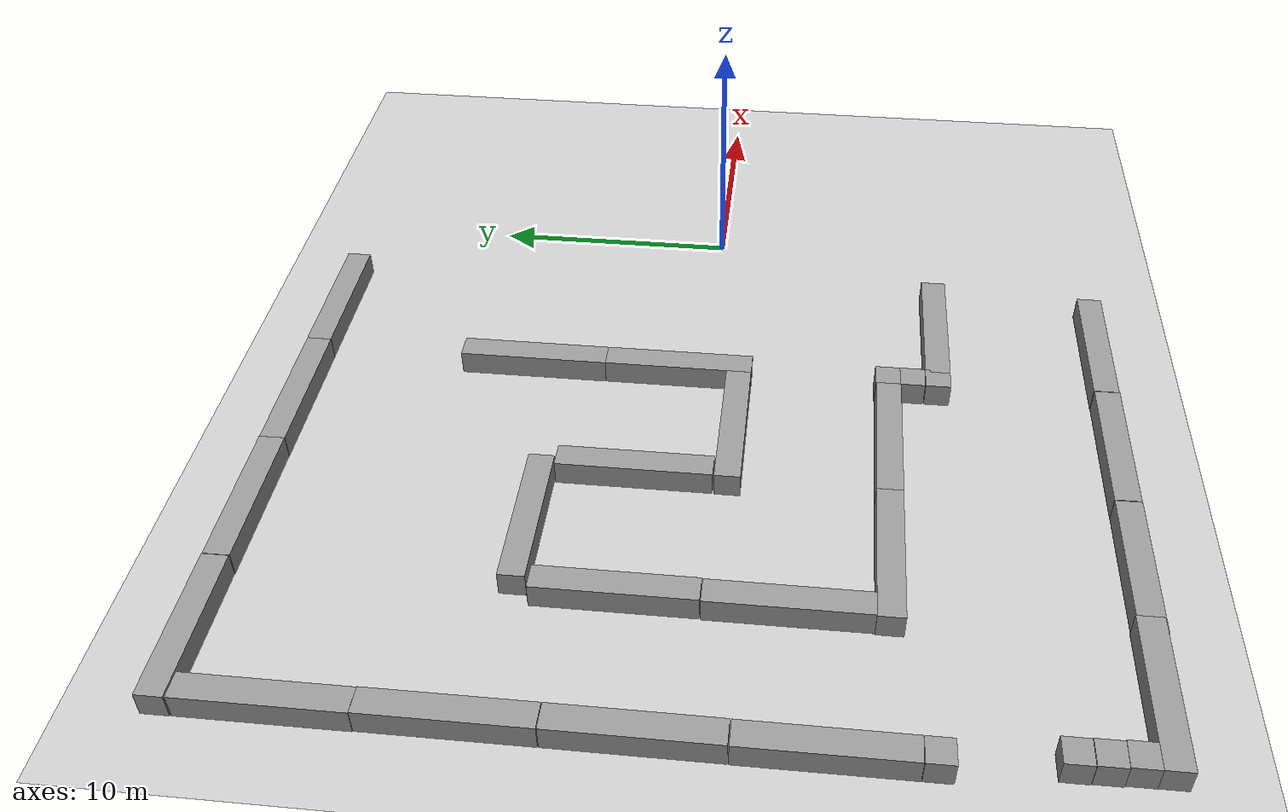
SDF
<sdf version="1.6">
 <world name="default">
  <model name="ground_plane">
   <static>1</static>
   <link name="link">
    <collision name="collision">
     <geometry><plane><normal>0 0 1</normal><size>100 100</size></plane></geometry>
     <surface>
      <contact><collide_bitmask>65535</collide_bitmask></contact>
      <friction><ode><mu>100</mu><mu2>50</mu2></ode></friction>
     </surface>
    </collision>
    <visual name="visual">
     <cast_shadows>0</cast_shadows>
     <geometry><plane><normal>0 0 1</normal><size>100 100</size></plane></geometry>
     <material>
      <script><uri>file://media/materials/scripts/gazebo.material</uri><name>Gazebo/Grey</name></script>
     </material>
    </visual>
   </link>
  </model>
  <model name="long_wall_0_8">
   <link name="link">
    <inertial>
     <mass>1</mass>
     <inertia>
      <ixx>0.166667</ixx>
      <ixy>0</ixy>
      <ixz>0</ixz>
      <iyy>0.166667</iyy>
      <iyz>0</iyz>
      <izz>0.166667</izz>
     </inertia>
    </inertial>
    <visual name="visual">
     <geometry><box><size>6 1 1</size></box></geometry>
     <material>
      <script><name>Gazebo/Grey</name><uri>file://media/materials/scripts/gazebo.material</uri></script>
      <shader type="vertex"><normal_map>__default__</normal_map></shader>
      <ambient>0.3 0.3 0.3 1</ambient>
      <diffuse>0.7 0.7 0.7 1</diffuse>
      <specular>0.01 0.01 0.01 1</specular>
      <emissive>0 0 0 1</emissive>
     </material>
     <pose>0 0 0.5 0 -0 0</pose>
    </visual>
    <collision name="collision">
     <geometry><box><size>1 1 1</size></box></geometry>
     <surface>
      <friction>
       <ode><mu>1</mu><mu2>1</mu2><fdir1>0 0 0</fdir1><slip1>0</slip1><slip2>0</slip2></ode>
       <torsional>
        <coefficient>1</coefficient>
        <patch_radius>0</patch_radius>
        <surface_radius>0</surface_radius>
        <use_patch_radius>1</use_patch_radius>
        <ode><slip>0</slip></ode>
       </torsional>
      </friction>
      <bounce><restitution_coefficient>0</restitution_coefficient><threshold>1e+06</threshold></bounce>
      <contact>
       <collide_without_contact>0</collide_without_contact>
       <collide_without_contact_bitmask>1</collide_without_contact_bitmask>
       <collide_bitmask>1</collide_bitmask>
       <ode>
        <soft_cfm>0</soft_cfm>
        <soft_erp>0.2</soft_erp>
        <kp>1e+13</kp>
        <kd>1</kd>
        <max_vel>0.01</max_vel>
        <min_depth>0</min_depth>
       </ode>
       <bullet>
        <split_impulse>1</split_impulse>
        <split_impulse_penetration_threshold>-0.01</split_impulse_penetration_threshold>
        <soft_cfm>0</soft_cfm>
        <soft_erp>0.2</soft_erp>
        <kp>1e+13</kp>
        <kd>1</kd>
       </bullet>
      </contact>
     </surface>
    </collision>
   </link>
   <static>0</static>
   <pose>-6.007 -9.51284 0 0 -0 0</pose>
  </model>
  <model name="long_wall_0_9">
   <link name="link">
    <inertial>
     <mass>1</mass>
     <inertia>
      <ixx>0.166667</ixx>
      <ixy>0</ixy>
      <ixz>0</ixz>
      <iyy>0.166667</iyy>
      <iyz>0</iyz>
      <izz>0.166667</izz>
     </inertia>
    </inertial>
    <visual name="visual">
     <geometry><box><size>6 1 1</size></box></geometry>
     <material>
      <script><name>Gazebo/Grey</name><uri>file://media/materials/scripts/gazebo.material</uri></script>
      <shader type="vertex"><normal_map>__default__</normal_map></shader>
      <ambient>0.3 0.3 0.3 1</ambient>
      <diffuse>0.7 0.7 0.7 1</diffuse>
      <specular>0.01 0.01 0.01 1</specular>
      <emissive>0 0 0 1</emissive>
     </material>
     <pose>0 0 0.5 0 -0 0</pose>
    </visual>
    <collision name="collision">
     <geometry><box><size>1 1 1</size></box></geometry>
     <surface>
      <friction>
       <ode><mu>1</mu><mu2>1</mu2><fdir1>0 0 0</fdir1><slip1>0</slip1><slip2>0</slip2></ode>
       <torsional>
        <coefficient>1</coefficient>
        <patch_radius>0</patch_radius>
        <surface_radius>0</surface_radius>
        <use_patch_radius>1</use_patch_radius>
        <ode><slip>0</slip></ode>
       </torsional>
      </friction>
      <bounce><restitution_coefficient>0</restitution_coefficient><threshold>1e+06</threshold></bounce>
      <contact>
       <collide_without_contact>0</collide_without_contact>
       <collide_without_contact_bitmask>1</collide_without_contact_bitmask>
       <collide_bitmask>1</collide_bitmask>
       <ode>
        <soft_cfm>0</soft_cfm>
        <soft_erp>0.2</soft_erp>
        <kp>1e+13</kp>
        <kd>1</kd>
        <max_vel>0.01</max_vel>
        <min_depth>0</min_depth>
       </ode>
       <bullet>
        <split_impulse>1</split_impulse>
        <split_impulse_penetration_threshold>-0.01</split_impulse_penetration_threshold>
        <soft_cfm>0</soft_cfm>
        <soft_erp>0.2</soft_erp>
        <kp>1e+13</kp>
        <kd>1</kd>
       </bullet>
      </contact>
     </surface>
    </collision>
   </link>
   <static>0</static>
   <pose>-9.2589 7.02842 0 0 0 -1.5708</pose>
  </model>
  <model name="long_wall_0_10">
   <link name="link">
    <inertial>
     <mass>1</mass>
     <inertia>
      <ixx>0.166667</ixx>
      <ixy>0</ixy>
      <ixz>0</ixz>
      <iyy>0.166667</iyy>
      <iyz>0</iyz>
      <izz>0.166667</izz>
     </inertia>
    </inertial>
    <visual name="visual">
     <geometry><box><size>6 1 1</size></box></geometry>
     <material>
      <script><name>Gazebo/Grey</name><uri>file://media/materials/scripts/gazebo.material</uri></script>
      <shader type="vertex"><normal_map>__default__</normal_map></shader>
      <ambient>0.3 0.3 0.3 1</ambient>
      <diffuse>0.7 0.7 0.7 1</diffuse>
      <specular>0.01 0.01 0.01 1</specular>
      <emissive>0 0 0 1</emissive>
     </material>
     <pose>0 0 0.5 0 -0 0</pose>
    </visual>
    <collision name="collision">
     <geometry><box><size>1 1 1</size></box></geometry>
     <surface>
      <friction>
       <ode><mu>1</mu><mu2>1</mu2><fdir1>0 0 0</fdir1><slip1>0</slip1><slip2>0</slip2></ode>
       <torsional>
        <coefficient>1</coefficient>
        <patch_radius>0</patch_radius>
        <surface_radius>0</surface_radius>
        <use_patch_radius>1</use_patch_radius>
        <ode><slip>0</slip></ode>
       </torsional>
      </friction>
      <bounce><restitution_coefficient>0</restitution_coefficient><threshold>1e+06</threshold></bounce>
      <contact>
       <collide_without_contact>0</collide_without_contact>
       <collide_without_contact_bitmask>1</collide_without_contact_bitmask>
       <collide_bitmask>1</collide_bitmask>
       <ode>
        <soft_cfm>0</soft_cfm>
        <soft_erp>0.2</soft_erp>
        <kp>1e+13</kp>
        <kd>1</kd>
        <max_vel>0.01</max_vel>
        <min_depth>0</min_depth>
       </ode>
       <bullet>
        <split_impulse>1</split_impulse>
        <split_impulse_penetration_threshold>-0.01</split_impulse_penetration_threshold>
        <soft_cfm>0</soft_cfm>
        <soft_erp>0.2</soft_erp>
        <kp>1e+13</kp>
        <kd>1</kd>
       </bullet>
      </contact>
     </surface>
    </collision>
   </link>
   <static>0</static>
   <pose>-9.25333 1.037 0 0 0 -1.5708</pose>
  </model>
  <model name="unit_box_4">
   <pose>-9.37003 -9.50695 0.5 0 -0 0</pose>
   <link name="link">
    <inertial>
     <mass>1</mass>
     <inertia>
      <ixx>0.166667</ixx>
      <ixy>0</ixy>
      <ixz>0</ixz>
      <iyy>0.166667</iyy>
      <iyz>0</iyz>
      <izz>0.166667</izz>
     </inertia>
    </inertial>
    <collision name="collision"><geometry><box><size>1 1 1</size></box></geometry></collision>
    <visual name="visual">
     <geometry><box><size>1 1 1</size></box></geometry>
     <material>
      <script><name>Gazebo/Grey</name><uri>file://media/materials/scripts/gazebo.material</uri></script>
     </material>
    </visual>
   </link>
  </model>
  <model name="unit_box_5">
   <pose>-9.37382 -8.48354 0.5 0 -0 0</pose>
   <link name="link">
    <inertial>
     <mass>1</mass>
     <inertia>
      <ixx>0.166667</ixx>
      <ixy>0</ixy>
      <ixz>0</ixz>
      <iyy>0.166667</iyy>
      <iyz>0</iyz>
      <izz>0.166667</izz>
     </inertia>
    </inertial>
    <collision name="collision"><geometry><box><size>1 1 1</size></box></geometry></collision>
    <visual name="visual">
     <geometry><box><size>1 1 1</size></box></geometry>
     <material>
      <script><name>Gazebo/Grey</name><uri>file://media/materials/scripts/gazebo.material</uri></script>
     </material>
    </visual>
   </link>
  </model>
  <model name="unit_box_6">
   <pose>-9.3806 -7.48919 0.5 0 -0 0</pose>
   <link name="link">
    <inertial>
     <mass>1</mass>
     <inertia>
      <ixx>0.166667</ixx>
      <ixy>0</ixy>
      <ixz>0</ixz>
      <iyy>0.166667</iyy>
      <iyz>0</iyz>
      <izz>0.166667</izz>
     </inertia>
    </inertial>
    <collision name="collision"><geometry><box><size>1 1 1</size></box></geometry></collision>
    <visual name="visual">
     <geometry><box><size>1 1 1</size></box></geometry>
     <material>
      <script><name>Gazebo/Grey</name><uri>file://media/materials/scripts/gazebo.material</uri></script>
     </material>
    </visual>
   </link>
  </model>
  <model name="long_wall_0_11">
   <link name="link">
    <inertial>
     <mass>1</mass>
     <inertia>
      <ixx>0.166667</ixx>
      <ixy>0</ixy>
      <ixz>0</ixz>
      <iyy>0.166667</iyy>
      <iyz>0</iyz>
      <izz>0.166667</izz>
     </inertia>
    </inertial>
    <visual name="visual">
     <geometry><box><size>6 1 1</size></box></geometry>
     <material>
      <script><name>Gazebo/Grey</name><uri>file://media/materials/scripts/gazebo.material</uri></script>
      <shader type="vertex"><normal_map>__default__</normal_map></shader>
      <ambient>0.3 0.3 0.3 1</ambient>
      <diffuse>0.7 0.7 0.7 1</diffuse>
      <specular>0.01 0.01 0.01 1</specular>
      <emissive>0 0 0 1</emissive>
     </material>
     <pose>0 0 0.5 0 -0 0</pose>
    </visual>
    <collision name="collision">
     <geometry><box><size>1 1 1</size></box></geometry>
     <surface>
      <friction>
       <ode><mu>1</mu><mu2>1</mu2><fdir1>0 0 0</fdir1><slip1>0</slip1><slip2>0</slip2></ode>
       <torsional>
        <coefficient>1</coefficient>
        <patch_radius>0</patch_radius>
        <surface_radius>0</surface_radius>
        <use_patch_radius>1</use_patch_radius>
        <ode><slip>0</slip></ode>
       </torsional>
      </friction>
      <bounce><restitution_coefficient>0</restitution_coefficient><threshold>1e+06</threshold></bounce>
      <contact>
       <collide_without_contact>0</collide_without_contact>
       <collide_without_contact_bitmask>1</collide_without_contact_bitmask>
       <collide_bitmask>1</collide_bitmask>
       <ode>
        <soft_cfm>0</soft_cfm>
        <soft_erp>0.2</soft_erp>
        <kp>1e+13</kp>
        <kd>1</kd>
        <max_vel>0.01</max_vel>
        <min_depth>0</min_depth>
       </ode>
       <bullet>
        <split_impulse>1</split_impulse>
        <split_impulse_penetration_threshold>-0.01</split_impulse_penetration_threshold>
        <soft_cfm>0</soft_cfm>
        <soft_erp>0.2</soft_erp>
        <kp>1e+13</kp>
        <kd>1</kd>
       </bullet>
      </contact>
     </surface>
    </collision>
   </link>
   <static>0</static>
   <pose>-12.7536 -1.45734 0 0 -0 0</pose>
  </model>
  <model name="long_wall_0_12">
   <link name="link">
    <inertial>
     <mass>1</mass>
     <inertia>
      <ixx>0.166667</ixx>
      <ixy>0</ixy>
      <ixz>0</ixz>
      <iyy>0.166667</iyy>
      <iyz>0</iyz>
      <izz>0.166667</izz>
     </inertia>
    </inertial>
    <visual name="visual">
     <geometry><box><size>6 1 1</size></box></geometry>
     <material>
      <script><name>Gazebo/Grey</name><uri>file://media/materials/scripts/gazebo.material</uri></script>
      <shader type="vertex"><normal_map>__default__</normal_map></shader>
      <ambient>0.3 0.3 0.3 1</ambient>
      <diffuse>0.7 0.7 0.7 1</diffuse>
      <specular>0.01 0.01 0.01 1</specular>
      <emissive>0 0 0 1</emissive>
     </material>
     <pose>0 0 0.5 0 -0 0</pose>
    </visual>
    <collision name="collision">
     <geometry><box><size>1 1 1</size></box></geometry>
     <surface>
      <friction>
       <ode><mu>1</mu><mu2>1</mu2><fdir1>0 0 0</fdir1><slip1>0</slip1><slip2>0</slip2></ode>
       <torsional>
        <coefficient>1</coefficient>
        <patch_radius>0</patch_radius>
        <surface_radius>0</surface_radius>
        <use_patch_radius>1</use_patch_radius>
        <ode><slip>0</slip></ode>
       </torsional>
      </friction>
      <bounce><restitution_coefficient>0</restitution_coefficient><threshold>1e+06</threshold></bounce>
      <contact>
       <collide_without_contact>0</collide_without_contact>
       <collide_without_contact_bitmask>1</collide_without_contact_bitmask>
       <collide_bitmask>1</collide_bitmask>
       <ode>
        <soft_cfm>0</soft_cfm>
        <soft_erp>0.2</soft_erp>
        <kp>1e+13</kp>
        <kd>1</kd>
        <max_vel>0.01</max_vel>
        <min_depth>0</min_depth>
       </ode>
       <bullet>
        <split_impulse>1</split_impulse>
        <split_impulse_penetration_threshold>-0.01</split_impulse_penetration_threshold>
        <soft_cfm>0</soft_cfm>
        <soft_erp>0.2</soft_erp>
        <kp>1e+13</kp>
        <kd>1</kd>
       </bullet>
      </contact>
     </surface>
    </collision>
   </link>
   <static>0</static>
   <pose>-12.8634 -7.51779 0 0 -0 0</pose>
  </model>
  <model name="long_wall_0_13">
   <link name="link">
    <inertial>
     <mass>1</mass>
     <inertia>
      <ixx>0.166667</ixx>
      <ixy>0</ixy>
      <ixz>0</ixz>
      <iyy>0.166667</iyy>
      <iyz>0</iyz>
      <izz>0.166667</izz>
     </inertia>
    </inertial>
    <visual name="visual">
     <geometry><box><size>6 1 1</size></box></geometry>
     <material>
      <script><name>Gazebo/Grey</name><uri>file://media/materials/scripts/gazebo.material</uri></script>
      <shader type="vertex"><normal_map>__default__</normal_map></shader>
      <ambient>0.3 0.3 0.3 1</ambient>
      <diffuse>0.7 0.7 0.7 1</diffuse>
      <specular>0.01 0.01 0.01 1</specular>
      <emissive>0 0 0 1</emissive>
     </material>
     <pose>0 0 0.5 0 -0 0</pose>
    </visual>
    <collision name="collision">
     <geometry><box><size>1 1 1</size></box></geometry>
     <surface>
      <friction>
       <ode><mu>1</mu><mu2>1</mu2><fdir1>0 0 0</fdir1><slip1>0</slip1><slip2>0</slip2></ode>
       <torsional>
        <coefficient>1</coefficient>
        <patch_radius>0</patch_radius>
        <surface_radius>0</surface_radius>
        <use_patch_radius>1</use_patch_radius>
        <ode><slip>0</slip></ode>
       </torsional>
      </friction>
      <bounce><restitution_coefficient>0</restitution_coefficient><threshold>1e+06</threshold></bounce>
      <contact>
       <collide_without_contact>0</collide_without_contact>
       <collide_without_contact_bitmask>1</collide_without_contact_bitmask>
       <collide_bitmask>1</collide_bitmask>
       <ode>
        <soft_cfm>0</soft_cfm>
        <soft_erp>0.2</soft_erp>
        <kp>1e+13</kp>
        <kd>1</kd>
        <max_vel>0.01</max_vel>
        <min_depth>0</min_depth>
       </ode>
       <bullet>
        <split_impulse>1</split_impulse>
        <split_impulse_penetration_threshold>-0.01</split_impulse_penetration_threshold>
        <soft_cfm>0</soft_cfm>
        <soft_erp>0.2</soft_erp>
        <kp>1e+13</kp>
        <kd>1</kd>
       </bullet>
      </contact>
     </surface>
    </collision>
   </link>
   <static>0</static>
   <pose>-18.8282 -7.51104 0 0 -0 0</pose>
  </model>
  <model name="long_wall_0_14">
   <link name="link">
    <inertial>
     <mass>1</mass>
     <inertia>
      <ixx>0.166667</ixx>
      <ixy>0</ixy>
      <ixz>0</ixz>
      <iyy>0.166667</iyy>
      <iyz>0</iyz>
      <izz>0.166667</izz>
     </inertia>
    </inertial>
    <visual name="visual">
     <geometry><box><size>6 1 1</size></box></geometry>
     <material>
      <script><name>Gazebo/Grey</name><uri>file://media/materials/scripts/gazebo.material</uri></script>
      <shader type="vertex"><normal_map>__default__</normal_map></shader>
      <ambient>0.3 0.3 0.3 1</ambient>
      <diffuse>0.7 0.7 0.7 1</diffuse>
      <specular>0.01 0.01 0.01 1</specular>
      <emissive>0 0 0 1</emissive>
     </material>
     <pose>0 0 0.5 0 -0 0</pose>
    </visual>
    <collision name="collision">
     <geometry><box><size>1 1 1</size></box></geometry>
     <surface>
      <friction>
       <ode><mu>1</mu><mu2>1</mu2><fdir1>0 0 0</fdir1><slip1>0</slip1><slip2>0</slip2></ode>
       <torsional>
        <coefficient>1</coefficient>
        <patch_radius>0</patch_radius>
        <surface_radius>0</surface_radius>
        <use_patch_radius>1</use_patch_radius>
        <ode><slip>0</slip></ode>
       </torsional>
      </friction>
      <bounce><restitution_coefficient>0</restitution_coefficient><threshold>1e+06</threshold></bounce>
      <contact>
       <collide_without_contact>0</collide_without_contact>
       <collide_without_contact_bitmask>1</collide_without_contact_bitmask>
       <collide_bitmask>1</collide_bitmask>
       <ode>
        <soft_cfm>0</soft_cfm>
        <soft_erp>0.2</soft_erp>
        <kp>1e+13</kp>
        <kd>1</kd>
        <max_vel>0.01</max_vel>
        <min_depth>0</min_depth>
       </ode>
       <bullet>
        <split_impulse>1</split_impulse>
        <split_impulse_penetration_threshold>-0.01</split_impulse_penetration_threshold>
        <soft_cfm>0</soft_cfm>
        <soft_erp>0.2</soft_erp>
        <kp>1e+13</kp>
        <kd>1</kd>
       </bullet>
      </contact>
     </surface>
    </collision>
   </link>
   <static>0</static>
   <pose>-21.2859 -4.01748 0 0 0 -1.5708</pose>
  </model>
  <model name="long_wall_0_15">
   <link name="link">
    <inertial>
     <mass>1</mass>
     <inertia>
      <ixx>0.166667</ixx>
      <ixy>0</ixy>
      <ixz>0</ixz>
      <iyy>0.166667</iyy>
      <iyz>0</iyz>
      <izz>0.166667</izz>
     </inertia>
    </inertial>
    <visual name="visual">
     <geometry><box><size>6 1 1</size></box></geometry>
     <material>
      <script><name>Gazebo/Grey</name><uri>file://media/materials/scripts/gazebo.material</uri></script>
      <shader type="vertex"><normal_map>__default__</normal_map></shader>
      <ambient>0.3 0.3 0.3 1</ambient>
      <diffuse>0.7 0.7 0.7 1</diffuse>
      <specular>0.01 0.01 0.01 1</specular>
      <emissive>0 0 0 1</emissive>
     </material>
     <pose>0 0 0.5 0 -0 0</pose>
    </visual>
    <collision name="collision">
     <geometry><box><size>1 1 1</size></box></geometry>
     <surface>
      <friction>
       <ode><mu>1</mu><mu2>1</mu2><fdir1>0 0 0</fdir1><slip1>0</slip1><slip2>0</slip2></ode>
       <torsional>
        <coefficient>1</coefficient>
        <patch_radius>0</patch_radius>
        <surface_radius>0</surface_radius>
        <use_patch_radius>1</use_patch_radius>
        <ode><slip>0</slip></ode>
       </torsional>
      </friction>
      <bounce><restitution_coefficient>0</restitution_coefficient><threshold>1e+06</threshold></bounce>
      <contact>
       <collide_without_contact>0</collide_without_contact>
       <collide_without_contact_bitmask>1</collide_without_contact_bitmask>
       <collide_bitmask>1</collide_bitmask>
       <ode>
        <soft_cfm>0</soft_cfm>
        <soft_erp>0.2</soft_erp>
        <kp>1e+13</kp>
        <kd>1</kd>
        <max_vel>0.01</max_vel>
        <min_depth>0</min_depth>
       </ode>
       <bullet>
        <split_impulse>1</split_impulse>
        <split_impulse_penetration_threshold>-0.01</split_impulse_penetration_threshold>
        <soft_cfm>0</soft_cfm>
        <soft_erp>0.2</soft_erp>
        <kp>1e+13</kp>
        <kd>1</kd>
       </bullet>
      </contact>
     </surface>
    </collision>
   </link>
   <static>0</static>
   <pose>-15.2372 2.09169 0 0 0 -1.5708</pose>
  </model>
  <model name="long_wall_0_16">
   <link name="link">
    <inertial>
     <mass>1</mass>
     <inertia>
      <ixx>0.166667</ixx>
      <ixy>0</ixy>
      <ixz>0</ixz>
      <iyy>0.166667</iyy>
      <iyz>0</iyz>
      <izz>0.166667</izz>
     </inertia>
    </inertial>
    <visual name="visual">
     <geometry><box><size>6 1 1</size></box></geometry>
     <material>
      <script><name>Gazebo/Grey</name><uri>file://media/materials/scripts/gazebo.material</uri></script>
      <shader type="vertex"><normal_map>__default__</normal_map></shader>
      <ambient>0.3 0.3 0.3 1</ambient>
      <diffuse>0.7 0.7 0.7 1</diffuse>
      <specular>0.01 0.01 0.01 1</specular>
      <emissive>0 0 0 1</emissive>
     </material>
     <pose>0 0 0.5 0 -0 0</pose>
    </visual>
    <collision name="collision">
     <geometry><box><size>1 1 1</size></box></geometry>
     <surface>
      <friction>
       <ode><mu>1</mu><mu2>1</mu2><fdir1>0 0 0</fdir1><slip1>0</slip1><slip2>0</slip2></ode>
       <torsional>
        <coefficient>1</coefficient>
        <patch_radius>0</patch_radius>
        <surface_radius>0</surface_radius>
        <use_patch_radius>1</use_patch_radius>
        <ode><slip>0</slip></ode>
       </torsional>
      </friction>
      <bounce><restitution_coefficient>0</restitution_coefficient><threshold>1e+06</threshold></bounce>
      <contact>
       <collide_without_contact>0</collide_without_contact>
       <collide_without_contact_bitmask>1</collide_without_contact_bitmask>
       <collide_bitmask>1</collide_bitmask>
       <ode>
        <soft_cfm>0</soft_cfm>
        <soft_erp>0.2</soft_erp>
        <kp>1e+13</kp>
        <kd>1</kd>
        <max_vel>0.01</max_vel>
        <min_depth>0</min_depth>
       </ode>
       <bullet>
        <split_impulse>1</split_impulse>
        <split_impulse_penetration_threshold>-0.01</split_impulse_penetration_threshold>
        <soft_cfm>0</soft_cfm>
        <soft_erp>0.2</soft_erp>
        <kp>1e+13</kp>
        <kd>1</kd>
       </bullet>
      </contact>
     </surface>
    </collision>
   </link>
   <static>0</static>
   <pose>-21.2545 2.01112 0 0 0 -1.5708</pose>
  </model>
  <model name="long_wall_0_19">
   <link name="link">
    <inertial>
     <mass>1</mass>
     <inertia>
      <ixx>0.166667</ixx>
      <ixy>0</ixy>
      <ixz>0</ixz>
      <iyy>0.166667</iyy>
      <iyz>0</iyz>
      <izz>0.166667</izz>
     </inertia>
    </inertial>
    <visual name="visual">
     <geometry><box><size>6 1 1</size></box></geometry>
     <material>
      <script><name>Gazebo/Grey</name><uri>file://media/materials/scripts/gazebo.material</uri></script>
      <shader type="vertex"><normal_map>__default__</normal_map></shader>
      <ambient>0.3 0.3 0.3 1</ambient>
      <diffuse>0.7 0.7 0.7 1</diffuse>
      <specular>0.01 0.01 0.01 1</specular>
      <emissive>0 0 0 1</emissive>
     </material>
     <pose>0 0 0.5 0 -0 0</pose>
    </visual>
    <collision name="collision">
     <geometry><box><size>1 1 1</size></box></geometry>
     <surface>
      <friction>
       <ode><mu>1</mu><mu2>1</mu2><fdir1>0 0 0</fdir1><slip1>0</slip1><slip2>0</slip2></ode>
       <torsional>
        <coefficient>1</coefficient>
        <patch_radius>0</patch_radius>
        <surface_radius>0</surface_radius>
        <use_patch_radius>1</use_patch_radius>
        <ode><slip>0</slip></ode>
       </torsional>
      </friction>
      <bounce><restitution_coefficient>0</restitution_coefficient><threshold>1e+06</threshold></bounce>
      <contact>
       <collide_without_contact>0</collide_without_contact>
       <collide_without_contact_bitmask>1</collide_without_contact_bitmask>
       <collide_bitmask>1</collide_bitmask>
       <ode>
        <soft_cfm>0</soft_cfm>
        <soft_erp>0.2</soft_erp>
        <kp>1e+13</kp>
        <kd>1</kd>
        <max_vel>0.01</max_vel>
        <min_depth>0</min_depth>
       </ode>
       <bullet>
        <split_impulse>1</split_impulse>
        <split_impulse_penetration_threshold>-0.01</split_impulse_penetration_threshold>
        <soft_cfm>0</soft_cfm>
        <soft_erp>0.2</soft_erp>
        <kp>1e+13</kp>
        <kd>1</kd>
       </bullet>
      </contact>
     </surface>
    </collision>
   </link>
   <static>0</static>
   <pose>-6.40068 16.163 0 0 -0 0</pose>
  </model>
  <model name="long_wall_0_20">
   <link name="link">
    <inertial>
     <mass>1</mass>
     <inertia>
      <ixx>0.166667</ixx>
      <ixy>0</ixy>
      <ixz>0</ixz>
      <iyy>0.166667</iyy>
      <iyz>0</iyz>
      <izz>0.166667</izz>
     </inertia>
    </inertial>
    <visual name="visual">
     <geometry><box><size>6 1 1</size></box></geometry>
     <material>
      <script><name>Gazebo/Grey</name><uri>file://media/materials/scripts/gazebo.material</uri></script>
      <shader type="vertex"><normal_map>__default__</normal_map></shader>
      <ambient>0.3 0.3 0.3 1</ambient>
      <diffuse>0.7 0.7 0.7 1</diffuse>
      <specular>0.01 0.01 0.01 1</specular>
      <emissive>0 0 0 1</emissive>
     </material>
     <pose>0 0 0.5 0 -0 0</pose>
    </visual>
    <collision name="collision">
     <geometry><box><size>1 1 1</size></box></geometry>
     <surface>
      <friction>
       <ode><mu>1</mu><mu2>1</mu2><fdir1>0 0 0</fdir1><slip1>0</slip1><slip2>0</slip2></ode>
       <torsional>
        <coefficient>1</coefficient>
        <patch_radius>0</patch_radius>
        <surface_radius>0</surface_radius>
        <use_patch_radius>1</use_patch_radius>
        <ode><slip>0</slip></ode>
       </torsional>
      </friction>
      <bounce><restitution_coefficient>0</restitution_coefficient><threshold>1e+06</threshold></bounce>
      <contact>
       <collide_without_contact>0</collide_without_contact>
       <collide_without_contact_bitmask>1</collide_without_contact_bitmask>
       <collide_bitmask>1</collide_bitmask>
       <ode>
        <soft_cfm>0</soft_cfm>
        <soft_erp>0.2</soft_erp>
        <kp>1e+13</kp>
        <kd>1</kd>
        <max_vel>0.01</max_vel>
        <min_depth>0</min_depth>
       </ode>
       <bullet>
        <split_impulse>1</split_impulse>
        <split_impulse_penetration_threshold>-0.01</split_impulse_penetration_threshold>
        <soft_cfm>0</soft_cfm>
        <soft_erp>0.2</soft_erp>
        <kp>1e+13</kp>
        <kd>1</kd>
       </bullet>
      </contact>
     </surface>
    </collision>
   </link>
   <static>0</static>
   <pose>-12.3993 16.1554 0 0 -0 0</pose>
  </model>
  <model name="long_wall_0_21">
   <link name="link">
    <inertial>
     <mass>1</mass>
     <inertia>
      <ixx>0.166667</ixx>
      <ixy>0</ixy>
      <ixz>0</ixz>
      <iyy>0.166667</iyy>
      <iyz>0</iyz>
      <izz>0.166667</izz>
     </inertia>
    </inertial>
    <visual name="visual">
     <geometry><box><size>6 1 1</size></box></geometry>
     <material>
      <script><name>Gazebo/Grey</name><uri>file://media/materials/scripts/gazebo.material</uri></script>
      <shader type="vertex"><normal_map>__default__</normal_map></shader>
      <ambient>0.3 0.3 0.3 1</ambient>
      <diffuse>0.7 0.7 0.7 1</diffuse>
      <specular>0.01 0.01 0.01 1</specular>
      <emissive>0 0 0 1</emissive>
     </material>
     <pose>0 0 0.5 0 -0 0</pose>
    </visual>
    <collision name="collision">
     <geometry><box><size>1 1 1</size></box></geometry>
     <surface>
      <friction>
       <ode><mu>1</mu><mu2>1</mu2><fdir1>0 0 0</fdir1><slip1>0</slip1><slip2>0</slip2></ode>
       <torsional>
        <coefficient>1</coefficient>
        <patch_radius>0</patch_radius>
        <surface_radius>0</surface_radius>
        <use_patch_radius>1</use_patch_radius>
        <ode><slip>0</slip></ode>
       </torsional>
      </friction>
      <bounce><restitution_coefficient>0</restitution_coefficient><threshold>1e+06</threshold></bounce>
      <contact>
       <collide_without_contact>0</collide_without_contact>
       <collide_without_contact_bitmask>1</collide_without_contact_bitmask>
       <collide_bitmask>1</collide_bitmask>
       <ode>
        <soft_cfm>0</soft_cfm>
        <soft_erp>0.2</soft_erp>
        <kp>1e+13</kp>
        <kd>1</kd>
        <max_vel>0.01</max_vel>
        <min_depth>0</min_depth>
       </ode>
       <bullet>
        <split_impulse>1</split_impulse>
        <split_impulse_penetration_threshold>-0.01</split_impulse_penetration_threshold>
        <soft_cfm>0</soft_cfm>
        <soft_erp>0.2</soft_erp>
        <kp>1e+13</kp>
        <kd>1</kd>
       </bullet>
      </contact>
     </surface>
    </collision>
   </link>
   <static>0</static>
   <pose>-18.3926 16.1642 0 0 -0 0</pose>
  </model>
  <model name="long_wall_0_22">
   <link name="link">
    <inertial>
     <mass>1</mass>
     <inertia>
      <ixx>0.166667</ixx>
      <ixy>0</ixy>
      <ixz>0</ixz>
      <iyy>0.166667</iyy>
      <iyz>0</iyz>
      <izz>0.166667</izz>
     </inertia>
    </inertial>
    <visual name="visual">
     <geometry><box><size>6 1 1</size></box></geometry>
     <material>
      <script><name>Gazebo/Grey</name><uri>file://media/materials/scripts/gazebo.material</uri></script>
      <shader type="vertex"><normal_map>__default__</normal_map></shader>
      <ambient>0.3 0.3 0.3 1</ambient>
      <diffuse>0.7 0.7 0.7 1</diffuse>
      <specular>0.01 0.01 0.01 1</specular>
      <emissive>0 0 0 1</emissive>
     </material>
     <pose>0 0 0.5 0 -0 0</pose>
    </visual>
    <collision name="collision">
     <geometry><box><size>1 1 1</size></box></geometry>
     <surface>
      <friction>
       <ode><mu>1</mu><mu2>1</mu2><fdir1>0 0 0</fdir1><slip1>0</slip1><slip2>0</slip2></ode>
       <torsional>
        <coefficient>1</coefficient>
        <patch_radius>0</patch_radius>
        <surface_radius>0</surface_radius>
        <use_patch_radius>1</use_patch_radius>
        <ode><slip>0</slip></ode>
       </torsional>
      </friction>
      <bounce><restitution_coefficient>0</restitution_coefficient><threshold>1e+06</threshold></bounce>
      <contact>
       <collide_without_contact>0</collide_without_contact>
       <collide_without_contact_bitmask>1</collide_without_contact_bitmask>
       <collide_bitmask>1</collide_bitmask>
       <ode>
        <soft_cfm>0</soft_cfm>
        <soft_erp>0.2</soft_erp>
        <kp>1e+13</kp>
        <kd>1</kd>
        <max_vel>0.01</max_vel>
        <min_depth>0</min_depth>
       </ode>
       <bullet>
        <split_impulse>1</split_impulse>
        <split_impulse_penetration_threshold>-0.01</split_impulse_penetration_threshold>
        <soft_cfm>0</soft_cfm>
        <soft_erp>0.2</soft_erp>
        <kp>1e+13</kp>
        <kd>1</kd>
       </bullet>
      </contact>
     </surface>
    </collision>
   </link>
   <static>0</static>
   <pose>-24.4067 16.1803 0 0 -0 0</pose>
  </model>
  <model name="long_wall_0_23">
   <link name="link">
    <inertial>
     <mass>1</mass>
     <inertia>
      <ixx>0.166667</ixx>
      <ixy>0</ixy>
      <ixz>0</ixz>
      <iyy>0.166667</iyy>
      <iyz>0</iyz>
      <izz>0.166667</izz>
     </inertia>
    </inertial>
    <visual name="visual">
     <geometry><box><size>6 1 1</size></box></geometry>
     <material>
      <script><name>Gazebo/Grey</name><uri>file://media/materials/scripts/gazebo.material</uri></script>
      <shader type="vertex"><normal_map>__default__</normal_map></shader>
      <ambient>0.3 0.3 0.3 1</ambient>
      <diffuse>0.7 0.7 0.7 1</diffuse>
      <specular>0.01 0.01 0.01 1</specular>
      <emissive>0 0 0 1</emissive>
     </material>
     <pose>0 0 0.5 0 -0 0</pose>
    </visual>
    <collision name="collision">
     <geometry><box><size>1 1 1</size></box></geometry>
     <surface>
      <friction>
       <ode><mu>1</mu><mu2>1</mu2><fdir1>0 0 0</fdir1><slip1>0</slip1><slip2>0</slip2></ode>
       <torsional>
        <coefficient>1</coefficient>
        <patch_radius>0</patch_radius>
        <surface_radius>0</surface_radius>
        <use_patch_radius>1</use_patch_radius>
        <ode><slip>0</slip></ode>
       </torsional>
      </friction>
      <bounce><restitution_coefficient>0</restitution_coefficient><threshold>1e+06</threshold></bounce>
      <contact>
       <collide_without_contact>0</collide_without_contact>
       <collide_without_contact_bitmask>1</collide_without_contact_bitmask>
       <collide_bitmask>1</collide_bitmask>
       <ode>
        <soft_cfm>0</soft_cfm>
        <soft_erp>0.2</soft_erp>
        <kp>1e+13</kp>
        <kd>1</kd>
        <max_vel>0.01</max_vel>
        <min_depth>0</min_depth>
       </ode>
       <bullet>
        <split_impulse>1</split_impulse>
        <split_impulse_penetration_threshold>-0.01</split_impulse_penetration_threshold>
        <soft_cfm>0</soft_cfm>
        <soft_erp>0.2</soft_erp>
        <kp>1e+13</kp>
        <kd>1</kd>
       </bullet>
      </contact>
     </surface>
    </collision>
   </link>
   <static>0</static>
   <pose>-26.8967 12.6292 0 0 0 -1.5708</pose>
  </model>
  <model name="long_wall_0_24">
   <link name="link">
    <inertial>
     <mass>1</mass>
     <inertia>
      <ixx>0.166667</ixx>
      <ixy>0</ixy>
      <ixz>0</ixz>
      <iyy>0.166667</iyy>
      <iyz>0</iyz>
      <izz>0.166667</izz>
     </inertia>
    </inertial>
    <visual name="visual">
     <geometry><box><size>6 1 1</size></box></geometry>
     <material>
      <script><name>Gazebo/Grey</name><uri>file://media/materials/scripts/gazebo.material</uri></script>
      <shader type="vertex"><normal_map>__default__</normal_map></shader>
      <ambient>0.3 0.3 0.3 1</ambient>
      <diffuse>0.7 0.7 0.7 1</diffuse>
      <specular>0.01 0.01 0.01 1</specular>
      <emissive>0 0 0 1</emissive>
     </material>
     <pose>0 0 0.5 0 -0 0</pose>
    </visual>
    <collision name="collision">
     <geometry><box><size>1 1 1</size></box></geometry>
     <surface>
      <friction>
       <ode><mu>1</mu><mu2>1</mu2><fdir1>0 0 0</fdir1><slip1>0</slip1><slip2>0</slip2></ode>
       <torsional>
        <coefficient>1</coefficient>
        <patch_radius>0</patch_radius>
        <surface_radius>0</surface_radius>
        <use_patch_radius>1</use_patch_radius>
        <ode><slip>0</slip></ode>
       </torsional>
      </friction>
      <bounce><restitution_coefficient>0</restitution_coefficient><threshold>1e+06</threshold></bounce>
      <contact>
       <collide_without_contact>0</collide_without_contact>
       <collide_without_contact_bitmask>1</collide_without_contact_bitmask>
       <collide_bitmask>1</collide_bitmask>
       <ode>
        <soft_cfm>0</soft_cfm>
        <soft_erp>0.2</soft_erp>
        <kp>1e+13</kp>
        <kd>1</kd>
        <max_vel>0.01</max_vel>
        <min_depth>0</min_depth>
       </ode>
       <bullet>
        <split_impulse>1</split_impulse>
        <split_impulse_penetration_threshold>-0.01</split_impulse_penetration_threshold>
        <soft_cfm>0</soft_cfm>
        <soft_erp>0.2</soft_erp>
        <kp>1e+13</kp>
        <kd>1</kd>
       </bullet>
      </contact>
     </surface>
    </collision>
   </link>
   <static>0</static>
   <pose>-26.8771 6.62686 0 0 0 -1.5708</pose>
  </model>
  <model name="long_wall_0_25">
   <link name="link">
    <inertial>
     <mass>1</mass>
     <inertia>
      <ixx>0.166667</ixx>
      <ixy>0</ixy>
      <ixz>0</ixz>
      <iyy>0.166667</iyy>
      <iyz>0</iyz>
      <izz>0.166667</izz>
     </inertia>
    </inertial>
    <visual name="visual">
     <geometry><box><size>6 1 1</size></box></geometry>
     <material>
      <script><name>Gazebo/Grey</name><uri>file://media/materials/scripts/gazebo.material</uri></script>
      <shader type="vertex"><normal_map>__default__</normal_map></shader>
      <ambient>0.3 0.3 0.3 1</ambient>
      <diffuse>0.7 0.7 0.7 1</diffuse>
      <specular>0.01 0.01 0.01 1</specular>
      <emissive>0 0 0 1</emissive>
     </material>
     <pose>0 0 0.5 0 -0 0</pose>
    </visual>
    <collision name="collision">
     <geometry><box><size>1 1 1</size></box></geometry>
     <surface>
      <friction>
       <ode><mu>1</mu><mu2>1</mu2><fdir1>0 0 0</fdir1><slip1>0</slip1><slip2>0</slip2></ode>
       <torsional>
        <coefficient>1</coefficient>
        <patch_radius>0</patch_radius>
        <surface_radius>0</surface_radius>
        <use_patch_radius>1</use_patch_radius>
        <ode><slip>0</slip></ode>
       </torsional>
      </friction>
      <bounce><restitution_coefficient>0</restitution_coefficient><threshold>1e+06</threshold></bounce>
      <contact>
       <collide_without_contact>0</collide_without_contact>
       <collide_without_contact_bitmask>1</collide_without_contact_bitmask>
       <collide_bitmask>1</collide_bitmask>
       <ode>
        <soft_cfm>0</soft_cfm>
        <soft_erp>0.2</soft_erp>
        <kp>1e+13</kp>
        <kd>1</kd>
        <max_vel>0.01</max_vel>
        <min_depth>0</min_depth>
       </ode>
       <bullet>
        <split_impulse>1</split_impulse>
        <split_impulse_penetration_threshold>-0.01</split_impulse_penetration_threshold>
        <soft_cfm>0</soft_cfm>
        <soft_erp>0.2</soft_erp>
        <kp>1e+13</kp>
        <kd>1</kd>
       </bullet>
      </contact>
     </surface>
    </collision>
   </link>
   <static>0</static>
   <pose>-26.8814 0.603165 0 0 0 -1.57271</pose>
  </model>
  <model name="long_wall_0_26">
   <link name="link">
    <inertial>
     <mass>1</mass>
     <inertia>
      <ixx>0.166667</ixx>
      <ixy>0</ixy>
      <ixz>0</ixz>
      <iyy>0.166667</iyy>
      <iyz>0</iyz>
      <izz>0.166667</izz>
     </inertia>
    </inertial>
    <visual name="visual">
     <geometry><box><size>6 1 1</size></box></geometry>
     <material>
      <script><name>Gazebo/Grey</name><uri>file://media/materials/scripts/gazebo.material</uri></script>
      <shader type="vertex"><normal_map>__default__</normal_map></shader>
      <ambient>0.3 0.3 0.3 1</ambient>
      <diffuse>0.7 0.7 0.7 1</diffuse>
      <specular>0.01 0.01 0.01 1</specular>
      <emissive>0 0 0 1</emissive>
     </material>
     <pose>0 0 0.5 0 -0 0</pose>
    </visual>
    <collision name="collision">
     <geometry><box><size>1 1 1</size></box></geometry>
     <surface>
      <friction>
       <ode><mu>1</mu><mu2>1</mu2><fdir1>0 0 0</fdir1><slip1>0</slip1><slip2>0</slip2></ode>
       <torsional>
        <coefficient>1</coefficient>
        <patch_radius>0</patch_radius>
        <surface_radius>0</surface_radius>
        <use_patch_radius>1</use_patch_radius>
        <ode><slip>0</slip></ode>
       </torsional>
      </friction>
      <bounce><restitution_coefficient>0</restitution_coefficient><threshold>1e+06</threshold></bounce>
      <contact>
       <collide_without_contact>0</collide_without_contact>
       <collide_without_contact_bitmask>1</collide_without_contact_bitmask>
       <collide_bitmask>1</collide_bitmask>
       <ode>
        <soft_cfm>0</soft_cfm>
        <soft_erp>0.2</soft_erp>
        <kp>1e+13</kp>
        <kd>1</kd>
        <max_vel>0.01</max_vel>
        <min_depth>0</min_depth>
       </ode>
       <bullet>
        <split_impulse>1</split_impulse>
        <split_impulse_penetration_threshold>-0.01</split_impulse_penetration_threshold>
        <soft_cfm>0</soft_cfm>
        <soft_erp>0.2</soft_erp>
        <kp>1e+13</kp>
        <kd>1</kd>
       </bullet>
      </contact>
     </surface>
    </collision>
   </link>
   <static>0</static>
   <pose>-26.8967 -5.43784 0 0 0 -1.5708</pose>
  </model>
  <model name="long_wall_0_27">
   <link name="link">
    <inertial>
     <mass>1</mass>
     <inertia>
      <ixx>0.166667</ixx>
      <ixy>0</ixy>
      <ixz>0</ixz>
      <iyy>0.166667</iyy>
      <iyz>0</iyz>
      <izz>0.166667</izz>
     </inertia>
    </inertial>
    <visual name="visual">
     <geometry><box><size>6 1 1</size></box></geometry>
     <material>
      <script><name>Gazebo/Grey</name><uri>file://media/materials/scripts/gazebo.material</uri></script>
      <shader type="vertex"><normal_map>__default__</normal_map></shader>
      <ambient>0.3 0.3 0.3 1</ambient>
      <diffuse>0.7 0.7 0.7 1</diffuse>
      <specular>0.01 0.01 0.01 1</specular>
      <emissive>0 0 0 1</emissive>
     </material>
     <pose>0 0 0.5 0 -0 0</pose>
    </visual>
    <collision name="collision">
     <geometry><box><size>1 1 1</size></box></geometry>
     <surface>
      <friction>
       <ode><mu>1</mu><mu2>1</mu2><fdir1>0 0 0</fdir1><slip1>0</slip1><slip2>0</slip2></ode>
       <torsional>
        <coefficient>1</coefficient>
        <patch_radius>0</patch_radius>
        <surface_radius>0</surface_radius>
        <use_patch_radius>1</use_patch_radius>
        <ode><slip>0</slip></ode>
       </torsional>
      </friction>
      <bounce><restitution_coefficient>0</restitution_coefficient><threshold>1e+06</threshold></bounce>
      <contact>
       <collide_without_contact>0</collide_without_contact>
       <collide_without_contact_bitmask>1</collide_without_contact_bitmask>
       <collide_bitmask>1</collide_bitmask>
       <ode>
        <soft_cfm>0</soft_cfm>
        <soft_erp>0.2</soft_erp>
        <kp>1e+13</kp>
        <kd>1</kd>
        <max_vel>0.01</max_vel>
        <min_depth>0</min_depth>
       </ode>
       <bullet>
        <split_impulse>1</split_impulse>
        <split_impulse_penetration_threshold>-0.01</split_impulse_penetration_threshold>
        <soft_cfm>0</soft_cfm>
        <soft_erp>0.2</soft_erp>
        <kp>1e+13</kp>
        <kd>1</kd>
       </bullet>
      </contact>
     </surface>
    </collision>
   </link>
   <static>0</static>
   <pose>-18.3163 5.64152 0 0 -0 0</pose>
  </model>
  <model name="long_wall_0_38">
   <link name="link">
    <inertial>
     <mass>1</mass>
     <inertia>
      <ixx>0.166667</ixx>
      <ixy>0</ixy>
      <ixz>0</ixz>
      <iyy>0.166667</iyy>
      <iyz>0</iyz>
      <izz>0.166667</izz>
     </inertia>
    </inertial>
    <visual name="visual">
     <geometry><box><size>6 1 1</size></box></geometry>
     <material>
      <script><name>Gazebo/Grey</name><uri>file://media/materials/scripts/gazebo.material</uri></script>
      <shader type="vertex"><normal_map>__default__</normal_map></shader>
      <ambient>0.3 0.3 0.3 1</ambient>
      <diffuse>0.7 0.7 0.7 1</diffuse>
      <specular>0.01 0.01 0.01 1</specular>
      <emissive>0 0 0 1</emissive>
     </material>
     <pose>0 0 0.5 0 -0 0</pose>
    </visual>
    <collision name="collision">
     <geometry><box><size>1 1 1</size></box></geometry>
     <surface>
      <friction>
       <ode><mu>1</mu><mu2>1</mu2><fdir1>0 0 0</fdir1><slip1>0</slip1><slip2>0</slip2></ode>
       <torsional>
        <coefficient>1</coefficient>
        <patch_radius>0</patch_radius>
        <surface_radius>0</surface_radius>
        <use_patch_radius>1</use_patch_radius>
        <ode><slip>0</slip></ode>
       </torsional>
      </friction>
      <bounce><restitution_coefficient>0</restitution_coefficient><threshold>1e+06</threshold></bounce>
      <contact>
       <collide_without_contact>0</collide_without_contact>
       <collide_without_contact_bitmask>1</collide_without_contact_bitmask>
       <collide_bitmask>1</collide_bitmask>
       <ode>
        <soft_cfm>0</soft_cfm>
        <soft_erp>0.2</soft_erp>
        <kp>1e+13</kp>
        <kd>1</kd>
        <max_vel>0.01</max_vel>
        <min_depth>0</min_depth>
       </ode>
       <bullet>
        <split_impulse>1</split_impulse>
        <split_impulse_penetration_threshold>-0.01</split_impulse_penetration_threshold>
        <soft_cfm>0</soft_cfm>
        <soft_erp>0.2</soft_erp>
        <kp>1e+13</kp>
        <kd>1</kd>
       </bullet>
      </contact>
     </surface>
    </collision>
   </link>
   <static>0</static>
   <pose>-6.52102 -16.185 0 0 -0 0</pose>
  </model>
  <model name="long_wall_0_39">
   <link name="link">
    <inertial>
     <mass>1</mass>
     <inertia>
      <ixx>0.166667</ixx>
      <ixy>0</ixy>
      <ixz>0</ixz>
      <iyy>0.166667</iyy>
      <iyz>0</iyz>
      <izz>0.166667</izz>
     </inertia>
    </inertial>
    <visual name="visual">
     <geometry><box><size>6 1 1</size></box></geometry>
     <material>
      <script><name>Gazebo/Grey</name><uri>file://media/materials/scripts/gazebo.material</uri></script>
      <shader type="vertex"><normal_map>__default__</normal_map></shader>
      <ambient>0.3 0.3 0.3 1</ambient>
      <diffuse>0.7 0.7 0.7 1</diffuse>
      <specular>0.01 0.01 0.01 1</specular>
      <emissive>0 0 0 1</emissive>
     </material>
     <pose>0 0 0.5 0 -0 0</pose>
    </visual>
    <collision name="collision">
     <geometry><box><size>1 1 1</size></box></geometry>
     <surface>
      <friction>
       <ode><mu>1</mu><mu2>1</mu2><fdir1>0 0 0</fdir1><slip1>0</slip1><slip2>0</slip2></ode>
       <torsional>
        <coefficient>1</coefficient>
        <patch_radius>0</patch_radius>
        <surface_radius>0</surface_radius>
        <use_patch_radius>1</use_patch_radius>
        <ode><slip>0</slip></ode>
       </torsional>
      </friction>
      <bounce><restitution_coefficient>0</restitution_coefficient><threshold>1e+06</threshold></bounce>
      <contact>
       <collide_without_contact>0</collide_without_contact>
       <collide_without_contact_bitmask>1</collide_without_contact_bitmask>
       <collide_bitmask>1</collide_bitmask>
       <ode>
        <soft_cfm>0</soft_cfm>
        <soft_erp>0.2</soft_erp>
        <kp>1e+13</kp>
        <kd>1</kd>
        <max_vel>0.01</max_vel>
        <min_depth>0</min_depth>
       </ode>
       <bullet>
        <split_impulse>1</split_impulse>
        <split_impulse_penetration_threshold>-0.01</split_impulse_penetration_threshold>
        <soft_cfm>0</soft_cfm>
        <soft_erp>0.2</soft_erp>
        <kp>1e+13</kp>
        <kd>1</kd>
       </bullet>
      </contact>
     </surface>
    </collision>
   </link>
   <static>0</static>
   <pose>-12.5416 -16.1996 0 0 -0 0</pose>
  </model>
  <model name="long_wall_0_40">
   <link name="link">
    <inertial>
     <mass>1</mass>
     <inertia>
      <ixx>0.166667</ixx>
      <ixy>0</ixy>
      <ixz>0</ixz>
      <iyy>0.166667</iyy>
      <iyz>0</iyz>
      <izz>0.166667</izz>
     </inertia>
    </inertial>
    <visual name="visual">
     <geometry><box><size>6 1 1</size></box></geometry>
     <material>
      <script><name>Gazebo/Grey</name><uri>file://media/materials/scripts/gazebo.material</uri></script>
      <shader type="vertex"><normal_map>__default__</normal_map></shader>
      <ambient>0.3 0.3 0.3 1</ambient>
      <diffuse>0.7 0.7 0.7 1</diffuse>
      <specular>0.01 0.01 0.01 1</specular>
      <emissive>0 0 0 1</emissive>
     </material>
     <pose>0 0 0.5 0 -0 0</pose>
    </visual>
    <collision name="collision">
     <geometry><box><size>1 1 1</size></box></geometry>
     <surface>
      <friction>
       <ode><mu>1</mu><mu2>1</mu2><fdir1>0 0 0</fdir1><slip1>0</slip1><slip2>0</slip2></ode>
       <torsional>
        <coefficient>1</coefficient>
        <patch_radius>0</patch_radius>
        <surface_radius>0</surface_radius>
        <use_patch_radius>1</use_patch_radius>
        <ode><slip>0</slip></ode>
       </torsional>
      </friction>
      <bounce><restitution_coefficient>0</restitution_coefficient><threshold>1e+06</threshold></bounce>
      <contact>
       <collide_without_contact>0</collide_without_contact>
       <collide_without_contact_bitmask>1</collide_without_contact_bitmask>
       <collide_bitmask>1</collide_bitmask>
       <ode>
        <soft_cfm>0</soft_cfm>
        <soft_erp>0.2</soft_erp>
        <kp>1e+13</kp>
        <kd>1</kd>
        <max_vel>0.01</max_vel>
        <min_depth>0</min_depth>
       </ode>
       <bullet>
        <split_impulse>1</split_impulse>
        <split_impulse_penetration_threshold>-0.01</split_impulse_penetration_threshold>
        <soft_cfm>0</soft_cfm>
        <soft_erp>0.2</soft_erp>
        <kp>1e+13</kp>
        <kd>1</kd>
       </bullet>
      </contact>
     </surface>
    </collision>
   </link>
   <static>0</static>
   <pose>-18.5686 -16.2065 0 0 -0 0</pose>
  </model>
  <model name="long_wall_0_41">
   <link name="link">
    <inertial>
     <mass>1</mass>
     <inertia>
      <ixx>0.166667</ixx>
      <ixy>0</ixy>
      <ixz>0</ixz>
      <iyy>0.166667</iyy>
      <iyz>0</iyz>
      <izz>0.166667</izz>
     </inertia>
    </inertial>
    <visual name="visual">
     <geometry><box><size>6 1 1</size></box></geometry>
     <material>
      <script><name>Gazebo/Grey</name><uri>file://media/materials/scripts/gazebo.material</uri></script>
      <shader type="vertex"><normal_map>__default__</normal_map></shader>
      <ambient>0.3 0.3 0.3 1</ambient>
      <diffuse>0.7 0.7 0.7 1</diffuse>
      <specular>0.01 0.01 0.01 1</specular>
      <emissive>0 0 0 1</emissive>
     </material>
     <pose>0 0 0.5 0 -0 0</pose>
    </visual>
    <collision name="collision">
     <geometry><box><size>1 1 1</size></box></geometry>
     <surface>
      <friction>
       <ode><mu>1</mu><mu2>1</mu2><fdir1>0 0 0</fdir1><slip1>0</slip1><slip2>0</slip2></ode>
       <torsional>
        <coefficient>1</coefficient>
        <patch_radius>0</patch_radius>
        <surface_radius>0</surface_radius>
        <use_patch_radius>1</use_patch_radius>
        <ode><slip>0</slip></ode>
       </torsional>
      </friction>
      <bounce><restitution_coefficient>0</restitution_coefficient><threshold>1e+06</threshold></bounce>
      <contact>
       <collide_without_contact>0</collide_without_contact>
       <collide_without_contact_bitmask>1</collide_without_contact_bitmask>
       <collide_bitmask>1</collide_bitmask>
       <ode>
        <soft_cfm>0</soft_cfm>
        <soft_erp>0.2</soft_erp>
        <kp>1e+13</kp>
        <kd>1</kd>
        <max_vel>0.01</max_vel>
        <min_depth>0</min_depth>
       </ode>
       <bullet>
        <split_impulse>1</split_impulse>
        <split_impulse_penetration_threshold>-0.01</split_impulse_penetration_threshold>
        <soft_cfm>0</soft_cfm>
        <soft_erp>0.2</soft_erp>
        <kp>1e+13</kp>
        <kd>1</kd>
       </bullet>
      </contact>
     </surface>
    </collision>
   </link>
   <static>0</static>
   <pose>-23.9224 -16.1833 0 0 -0 0</pose>
  </model>
  <model name="unit_box_7">
   <pose>-26.897 -8.95329 0.5 0 -0 0</pose>
   <link name="link">
    <inertial>
     <mass>1</mass>
     <inertia>
      <ixx>0.166667</ixx>
      <ixy>0</ixy>
      <ixz>0</ixz>
      <iyy>0.166667</iyy>
      <iyz>0</iyz>
      <izz>0.166667</izz>
     </inertia>
    </inertial>
    <collision name="collision"><geometry><box><size>1 1 1</size></box></geometry></collision>
    <visual name="visual">
     <geometry><box><size>1 1 1</size></box></geometry>
     <material>
      <script><name>Gazebo/Grey</name><uri>file://media/materials/scripts/gazebo.material</uri></script>
     </material>
    </visual>
   </link>
  </model>
  <model name="unit_box_8">
   <pose>-26.4302 -15.1874 0.5 0 -0 0</pose>
   <link name="link">
    <inertial>
     <mass>1</mass>
     <inertia>
      <ixx>0.166667</ixx>
      <ixy>0</ixy>
      <ixz>0</ixz>
      <iyy>0.166667</iyy>
      <iyz>0</iyz>
      <izz>0.166667</izz>
     </inertia>
    </inertial>
    <collision name="collision"><geometry><box><size>1 1 1</size></box></geometry></collision>
    <visual name="visual">
     <geometry><box><size>1 1 1</size></box></geometry>
     <material>
      <script><name>Gazebo/Grey</name><uri>file://media/materials/scripts/gazebo.material</uri></script>
     </material>
    </visual>
   </link>
  </model>
  <model name="unit_box_9">
   <pose>-26.4697 -14.1834 0.5 0 -0 0</pose>
   <link name="link">
    <inertial>
     <mass>1</mass>
     <inertia>
      <ixx>0.166667</ixx>
      <ixy>0</ixy>
      <ixz>0</ixz>
      <iyy>0.166667</iyy>
      <iyz>0</iyz>
      <izz>0.166667</izz>
     </inertia>
    </inertial>
    <collision name="collision"><geometry><box><size>1 1 1</size></box></geometry></collision>
    <visual name="visual">
     <geometry><box><size>1 1 1</size></box></geometry>
     <material>
      <script><name>Gazebo/Grey</name><uri>file://media/materials/scripts/gazebo.material</uri></script>
     </material>
    </visual>
   </link>
  </model>
  <model name="unit_box_10">
   <pose>-26.4901 -13.1642 0.5 0 -0 0</pose>
   <link name="link">
    <inertial>
     <mass>1</mass>
     <inertia>
      <ixx>0.166667</ixx>
      <ixy>0</ixy>
      <ixz>0</ixz>
      <iyy>0.166667</iyy>
      <iyz>0</iyz>
      <izz>0.166667</izz>
     </inertia>
    </inertial>
    <collision name="collision"><geometry><box><size>1 1 1</size></box></geometry></collision>
    <visual name="visual">
     <geometry><box><size>1 1 1</size></box></geometry>
     <material>
      <script><name>Gazebo/Grey</name><uri>file://media/materials/scripts/gazebo.material</uri></script>
     </material>
    </visual>
   </link>
  </model>
 </world>
</sdf>
